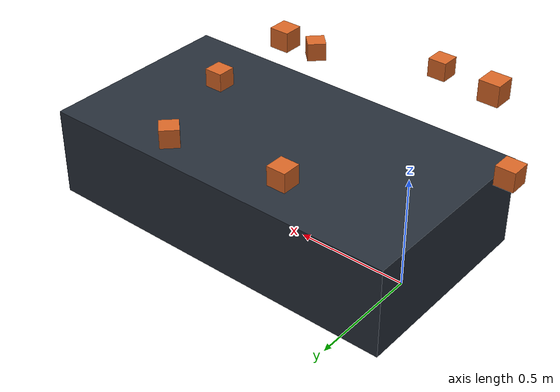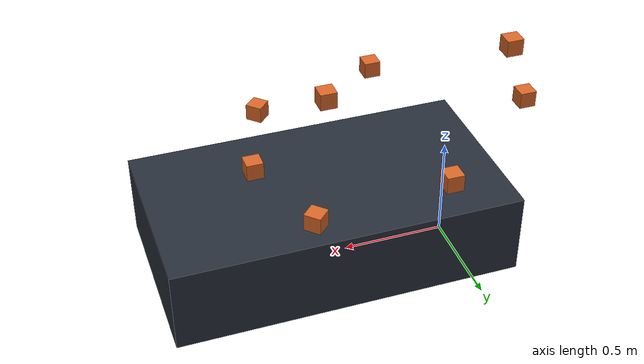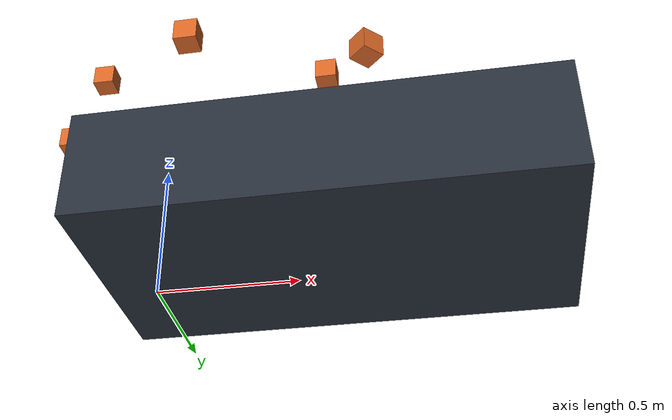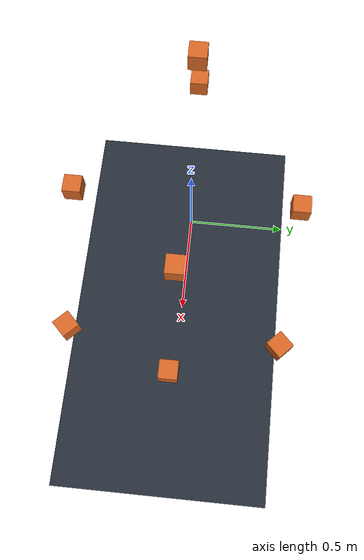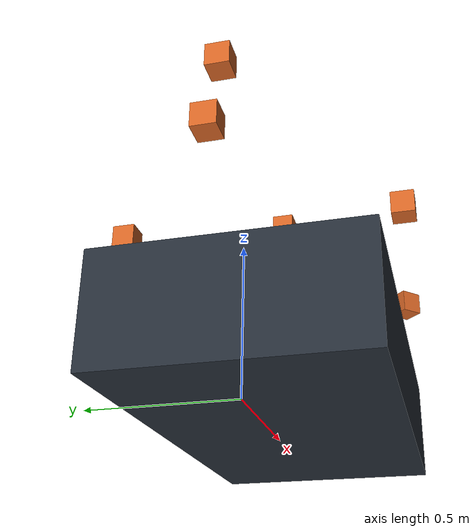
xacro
<?xml version="1.0"?>
<robot name="aris" xmlns:xacro="http://www.ros.org/wiki/xacro">

  <!-- Confirmed kinematics. Calibrate max_steer on the real vehicle and update here. -->
  <xacro:property name="wheelbase" value="1.25"/>   <!-- m, rear axle to front axle -->
  <xacro:property name="max_steer" value="0.6"/>    <!-- rad, steering limit -->
  <xacro:property name="track" value="0.9"/>        <!-- m, approximate wheel track -->

  <!-- Injects simulation-only additions (Gazebo sensor plugins) without touching
       the kinematics/TF that the real vehicle also relies on. -->
  <xacro:arg name="use_sim" default="true"/>

  <material name="aris_body"><color rgba="0.15 0.18 0.22 1.0"/></material>
  <material name="aris_sensor"><color rgba="0.85 0.40 0.15 1.0"/></material>

  <!-- Vehicle base frame: origin at the rear axle on the ground plane. -->
  <link name="base_link">
    <visual>
      <origin xyz="${wheelbase/2} 0 0.25" rpy="0 0 0"/>
      <geometry><box size="${wheelbase + 0.4} ${track} 0.4"/></geometry>
      <material name="aris_body"/>
    </visual>
  </link>

  <!-- Fixed sensor frame with a small visual marker. -->
  <xacro:macro name="sensor_frame" params="name xyz rpy">
    <link name="${name}">
      <visual>
        <geometry><box size="0.08 0.08 0.08"/></geometry>
        <material name="aris_sensor"/>
      </visual>
    </link>
    <joint name="${name}_joint" type="fixed">
      <parent link="base_link"/>
      <child link="${name}"/>
      <origin xyz="${xyz}" rpy="${rpy}"/>
    </joint>
  </xacro:macro>

  <!-- Extrinsic calibration (PDF ch5). Initial estimates; refine with
       LiDAR<->camera calibration on the real vehicle and commit back here. -->
  <xacro:sensor_frame name="lidar_link"        xyz="0.6 0 0.9"     rpy="0 0 0"/>
  <xacro:sensor_frame name="imu_link"          xyz="0.0 0 0.2"     rpy="0 0 0"/>
  <xacro:sensor_frame name="gps_link"          xyz="-0.3 0 1.0"    rpy="0 0 0"/>
  <xacro:sensor_frame name="camera_front_link" xyz="0.95 0 0.6"    rpy="0 0 0"/>
  <xacro:sensor_frame name="camera_fl_link"    xyz="0.8 0.45 0.6"  rpy="0 0 0.785"/>
  <xacro:sensor_frame name="camera_fr_link"    xyz="0.8 -0.45 0.6" rpy="0 0 -0.785"/>
  <xacro:sensor_frame name="camera_left_link"  xyz="0.2 0.5 0.7"   rpy="0 0 1.571"/>
  <xacro:sensor_frame name="camera_right_link" xyz="0.2 -0.5 0.7"  rpy="0 0 -1.571"/>
  <xacro:sensor_frame name="camera_rear_link"  xyz="-0.4 0 0.7"    rpy="0 0 3.142"/>

  <xacro:if value="$(arg use_sim)">
    <gazebo reference="lidar_link">
      <sensor name="gpu_lidar" type="gpu_lidar">
        <topic>scan_cloud</topic>
        <update_rate>10</update_rate>
        <lidar>
          <scan>
            <horizontal>
              <samples>640</samples>
              <resolution>1</resolution>
              <min_angle>-1.396263</min_angle>
              <max_angle>1.396263</max_angle>
            </horizontal>
            <vertical>
              <samples>16</samples>
              <resolution>1</resolution>
              <min_angle>-0.261799</min_angle>
              <max_angle>0.261799</max_angle>
            </vertical>
          </scan>
          <range>
            <min>0.08</min>
            <max>10.0</max>
            <resolution>0.01</resolution>
          </range>
        </lidar>
        <always_on>1</always_on>
        <visualize>false</visualize>
      </sensor>
    </gazebo>
  </xacro:if>

</robot>
